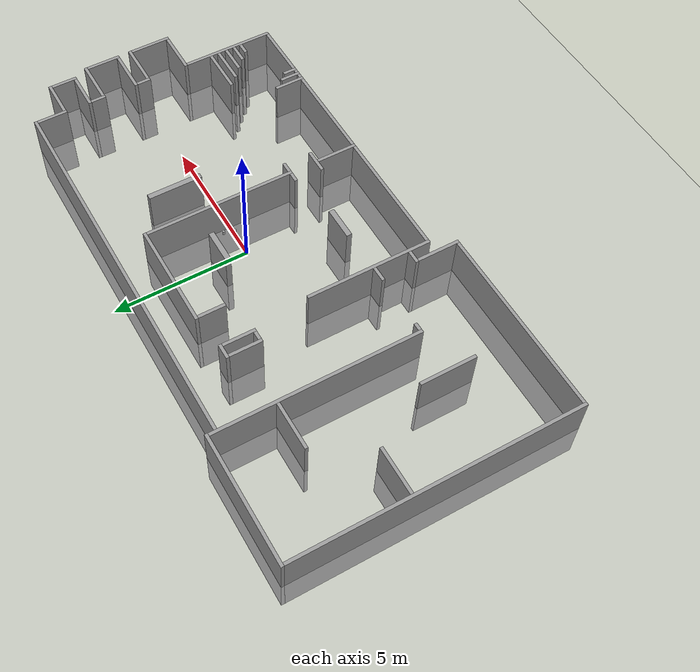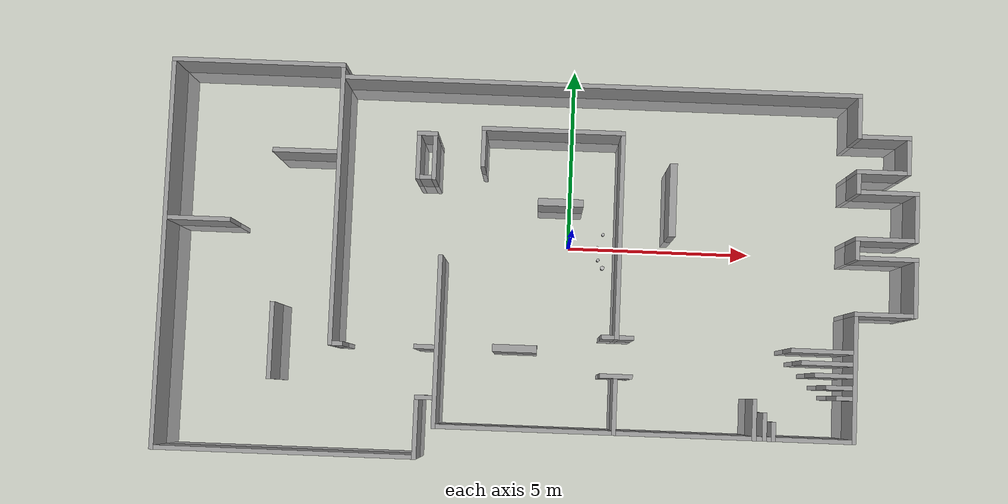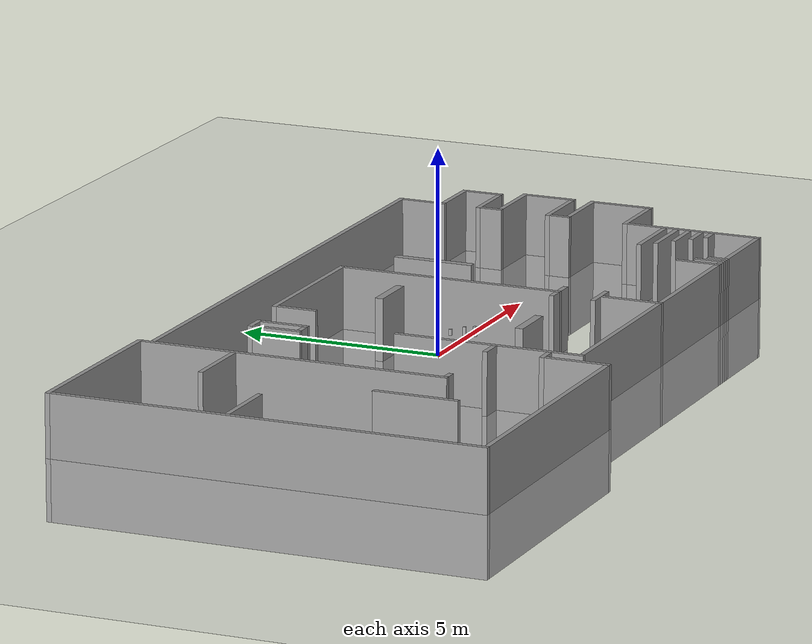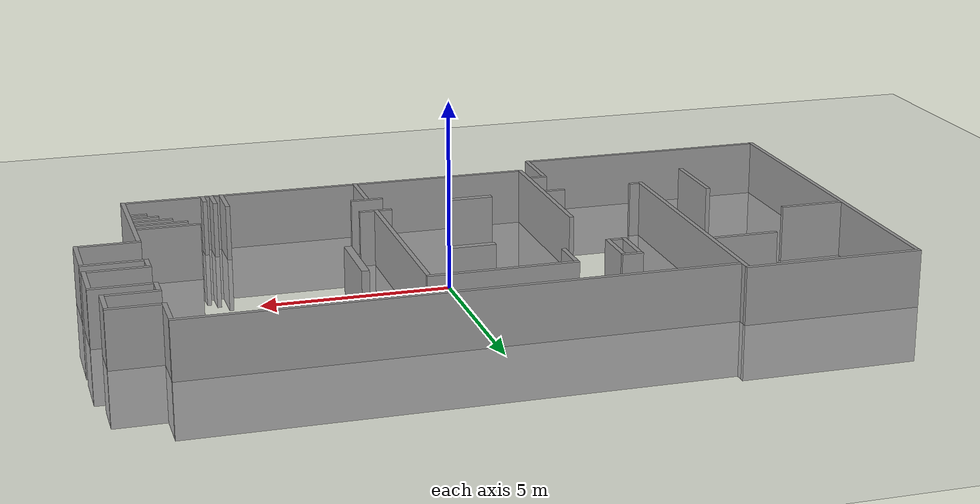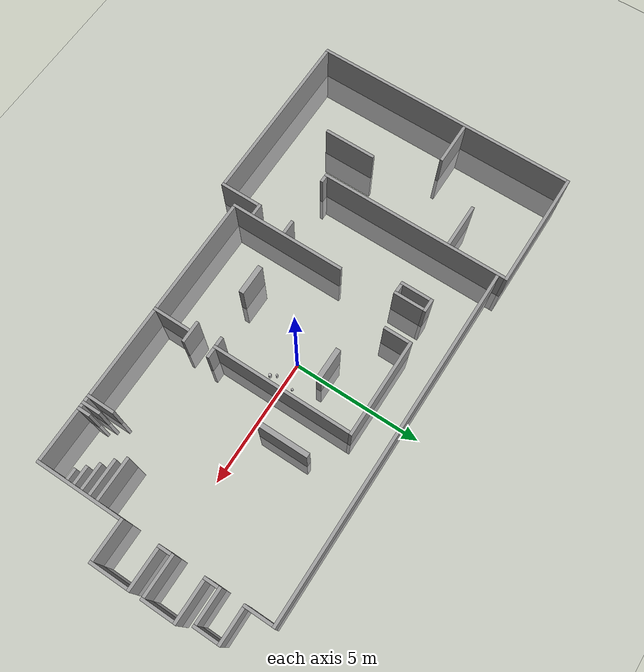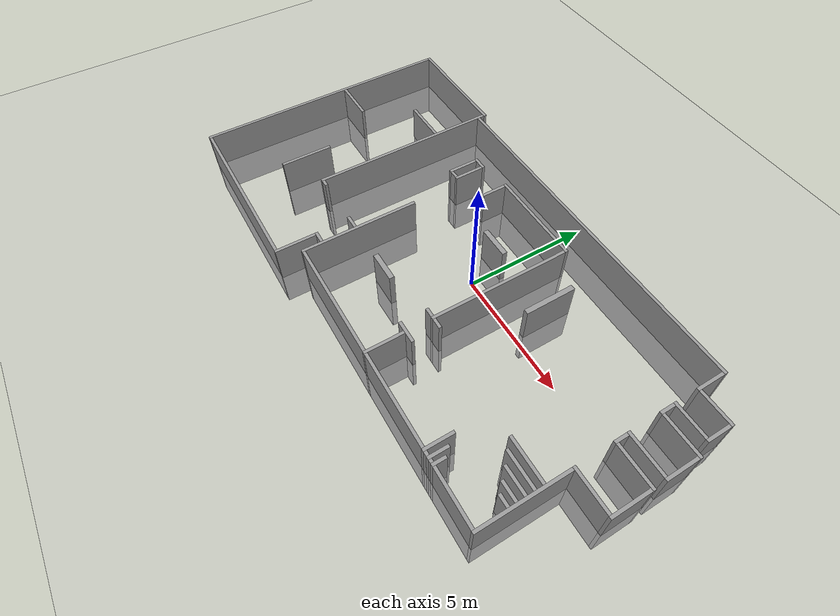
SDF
<sdf version="1.6">
 <world name="home">
  <light name="sun" type="directional">
   <pose>0 0 10 0 -0 0</pose>
   <diffuse>0.8 0.8 0.8 1</diffuse>
   <specular>0.1 0.1 0.1 1</specular>
   <attenuation>
    <range>1000</range>
    <constant>0.9</constant>
    <linear>0.01</linear>
    <quadratic>0.001</quadratic>
   </attenuation>
   <direction>-0.5 0.5 -1</direction>
  </light>
  <model name="ground_plane">
   <static>1</static>
   <link name="link">
    <collision name="collision">
     <geometry><plane><normal>0 0 1</normal><size>100 100</size></plane></geometry>
     <surface><friction><ode><mu>100</mu><mu2>50</mu2></ode></friction></surface>
    </collision>
    <visual name="visual">
     <cast_shadows>0</cast_shadows>
     <geometry><plane><normal>0 0 1</normal><size>100 100</size></plane></geometry>
     <material>
      <script><uri>file://media/materials/scripts/gazebo.material</uri><name>Gazebo/Grey</name></script>
     </material>
    </visual>
   </link>
  </model>
  <gravity>0 0 -9.8</gravity>
  <magnetic_field>6e-06 2.3e-05 -4.2e-05</magnetic_field>
  <atmosphere type="adiabatic"/>
  <physics name="default_physics" default="0" type="ode">
   <max_step_size>0.001</max_step_size>
   <real_time_factor>1</real_time_factor>
   <real_time_update_rate>1000</real_time_update_rate>
  </physics>
  <scene><ambient>0.4 0.4 0.4 1</ambient><background>0.7 0.7 0.7 1</background><shadows>1</shadows></scene>
  <spherical_coordinates>
   <surface_model>EARTH_WGS84</surface_model>
   <latitude_deg>0</latitude_deg>
   <longitude_deg>0</longitude_deg>
   <elevation>0</elevation>
   <heading_deg>0</heading_deg>
  </spherical_coordinates>
  <model name="TestingRoom">
   <static>1</static>
   <link name="Wall_0">
    <collision name="Wall_0_Collision">
     <geometry><box><size>4.76 0.12 3</size></box></geometry>
     <pose>2.58 -0.26 0 0 -0 0</pose>
    </collision>
    <visual name="Wall_0_Visual">
     <geometry><box><size>4.76 0.12 3</size></box></geometry>
     <material>
      <script><uri>file://media/materials/scripts/gazebo.material</uri><name>Gazebo/Grey</name></script>
     </material>
     <pose>2.58 -0.26 0 0 -0 0</pose>
    </visual>
   </link>
   <link name="Wall_1">
    <collision name="Wall_1_Collision">
     <geometry><box><size>0.12 10.56 3</size></box></geometry>
     <pose>0.26 -5.6 0 0 -0 0</pose>
    </collision>
    <visual name="Wall_1_Visual">
     <geometry><box><size>0.12 10.56 3</size></box></geometry>
     <material>
      <script><uri>file://media/materials/scripts/gazebo.material</uri><name>Gazebo/Grey</name></script>
     </material>
     <pose>0.26 -5.6 0 0 -0 0</pose>
    </visual>
   </link>
   <link name="Wall_2">
    <collision name="Wall_2_Collision">
     <geometry><box><size>0.12 7.6 3</size></box></geometry>
     <pose>4.9 -4.12 0 0 -0 0</pose>
    </collision>
    <visual name="Wall_2_Visual">
     <geometry><box><size>0.12 7.6 3</size></box></geometry>
     <material>
      <script><uri>file://media/materials/scripts/gazebo.material</uri><name>Gazebo/Grey</name></script>
     </material>
     <pose>4.9 -4.12 0 0 -0 0</pose>
    </visual>
   </link>
   <link name="Wall_3">
    <collision name="Wall_3_Collision">
     <geometry><box><size>14.16 0.12 3</size></box></geometry>
     <pose>12.04 -0.58 0 0 -0 0</pose>
    </collision>
    <visual name="Wall_3_Visual">
     <geometry><box><size>14.16 0.12 3</size></box></geometry>
     <material>
      <script><uri>file://media/materials/scripts/gazebo.material</uri><name>Gazebo/Grey</name></script>
     </material>
     <pose>12.04 -0.58 0 0 -0 0</pose>
    </visual>
   </link>
   <link name="Wall_4">
    <collision name="Wall_4_Collision">
     <geometry><box><size>0.12 1.12 3</size></box></geometry>
     <pose>19.06 -1.2 0 0 -0 0</pose>
    </collision>
    <visual name="Wall_4_Visual">
     <geometry><box><size>0.12 1.12 3</size></box></geometry>
     <material>
      <script><uri>file://media/materials/scripts/gazebo.material</uri><name>Gazebo/Grey</name></script>
     </material>
     <pose>19.06 -1.2 0 0 -0 0</pose>
    </visual>
   </link>
   <link name="Wall_5">
    <collision name="Wall_5_Collision">
     <geometry><box><size>1.36 0.12 3</size></box></geometry>
     <pose>19.8 -1.7 0 0 -0 0</pose>
    </collision>
    <visual name="Wall_5_Visual">
     <geometry><box><size>1.36 0.12 3</size></box></geometry>
     <material>
      <script><uri>file://media/materials/scripts/gazebo.material</uri><name>Gazebo/Grey</name></script>
     </material>
     <pose>19.8 -1.7 0 0 -0 0</pose>
    </visual>
   </link>
   <link name="Wall_6">
    <collision name="Wall_6_Collision">
     <geometry><box><size>0.12 0.96 3</size></box></geometry>
     <pose>20.42 -2.24 0 0 -0 0</pose>
    </collision>
    <visual name="Wall_6_Visual">
     <geometry><box><size>0.12 0.96 3</size></box></geometry>
     <material>
      <script><uri>file://media/materials/scripts/gazebo.material</uri><name>Gazebo/Grey</name></script>
     </material>
     <pose>20.42 -2.24 0 0 -0 0</pose>
    </visual>
   </link>
   <link name="Wall_7">
    <collision name="Wall_7_Collision">
     <geometry><box><size>3.92 0.12 3</size></box></geometry>
     <pose>10.72 -1.86 0 0 -0 0</pose>
    </collision>
    <visual name="Wall_7_Visual">
     <geometry><box><size>3.92 0.12 3</size></box></geometry>
     <material>
      <script><uri>file://media/materials/scripts/gazebo.material</uri><name>Gazebo/Grey</name></script>
     </material>
     <pose>10.72 -1.86 0 0 -0 0</pose>
    </visual>
   </link>
   <link name="Wall_8">
    <collision name="Wall_8_Collision">
     <geometry><box><size>0.12 1 3</size></box></geometry>
     <pose>8.82 -2.42 0 0 -0 0</pose>
    </collision>
    <visual name="Wall_8_Visual">
     <geometry><box><size>0.12 1 3</size></box></geometry>
     <material>
      <script><uri>file://media/materials/scripts/gazebo.material</uri><name>Gazebo/Grey</name></script>
     </material>
     <pose>8.82 -2.42 0 0 -0 0</pose>
    </visual>
   </link>
   <link name="Wall_9">
    <collision name="Wall_9_Collision">
     <geometry><box><size>0.12 5.56 3</size></box></geometry>
     <pose>12.62 -4.7 0 0 -0 0</pose>
    </collision>
    <visual name="Wall_9_Visual">
     <geometry><box><size>0.12 5.56 3</size></box></geometry>
     <material>
      <script><uri>file://media/materials/scripts/gazebo.material</uri><name>Gazebo/Grey</name></script>
     </material>
     <pose>12.62 -4.7 0 0 -0 0</pose>
    </visual>
   </link>
   <link name="Wall_10">
    <collision name="Wall_10_Collision">
     <geometry><box><size>0.56 0.12 3</size></box></geometry>
     <pose>7.28 -2.06 0 0 -0 0</pose>
    </collision>
    <visual name="Wall_10_Visual">
     <geometry><box><size>0.56 0.12 3</size></box></geometry>
     <material>
      <script><uri>file://media/materials/scripts/gazebo.material</uri><name>Gazebo/Grey</name></script>
     </material>
     <pose>7.28 -2.06 0 0 -0 0</pose>
    </visual>
   </link>
   <link name="Wall_11">
    <collision name="Wall_11_Collision">
     <geometry><box><size>0.12 1.2 3</size></box></geometry>
     <pose>7.06 -2.72 0 0 -0 0</pose>
    </collision>
    <visual name="Wall_11_Visual">
     <geometry><box><size>0.12 1.2 3</size></box></geometry>
     <material>
      <script><uri>file://media/materials/scripts/gazebo.material</uri><name>Gazebo/Grey</name></script>
     </material>
     <pose>7.06 -2.72 0 0 -0 0</pose>
    </visual>
   </link>
   <link name="Wall_12">
    <collision name="Wall_12_Collision">
     <geometry><box><size>0.12 1.2 3</size></box></geometry>
     <pose>7.5 -2.72 0 0 -0 0</pose>
    </collision>
    <visual name="Wall_12_Visual">
     <geometry><box><size>0.12 1.2 3</size></box></geometry>
     <material>
      <script><uri>file://media/materials/scripts/gazebo.material</uri><name>Gazebo/Grey</name></script>
     </material>
     <pose>7.5 -2.72 0 0 -0 0</pose>
    </visual>
   </link>
   <link name="Wall_13">
    <collision name="Wall_13_Collision">
     <geometry><box><size>1.76 0.12 3</size></box></geometry>
     <pose>3.96 -2.66 0 0 -0 0</pose>
    </collision>
    <visual name="Wall_13_Visual">
     <geometry><box><size>1.76 0.12 3</size></box></geometry>
     <material>
      <script><uri>file://media/materials/scripts/gazebo.material</uri><name>Gazebo/Grey</name></script>
     </material>
     <pose>3.96 -2.66 0 0 -0 0</pose>
    </visual>
   </link>
   <link name="Wall_14">
    <collision name="Wall_14_Collision">
     <geometry><box><size>1.36 0.12 3</size></box></geometry>
     <pose>19.68 -2.66 0 0 -0 0</pose>
    </collision>
    <visual name="Wall_14_Visual">
     <geometry><box><size>1.36 0.12 3</size></box></geometry>
     <material>
      <script><uri>file://media/materials/scripts/gazebo.material</uri><name>Gazebo/Grey</name></script>
     </material>
     <pose>19.68 -2.66 0 0 -0 0</pose>
    </visual>
   </link>
   <link name="Wall_15">
    <collision name="Wall_15_Collision">
     <geometry><box><size>0.2 2 3</size></box></geometry>
     <pose>14.02 -3.64 0 0 -0 0</pose>
    </collision>
    <visual name="Wall_15_Visual">
     <geometry><box><size>0.2 2 3</size></box></geometry>
     <material>
      <script><uri>file://media/materials/scripts/gazebo.material</uri><name>Gazebo/Grey</name></script>
     </material>
     <pose>14.02 -3.64 0 0 -0 0</pose>
    </visual>
   </link>
   <link name="Wall_16">
    <collision name="Wall_16_Collision">
     <geometry><box><size>0.12 0.56 3</size></box></geometry>
     <pose>19.06 -3 0 0 -0 0</pose>
    </collision>
    <visual name="Wall_16_Visual">
     <geometry><box><size>0.12 0.56 3</size></box></geometry>
     <material>
      <script><uri>file://media/materials/scripts/gazebo.material</uri><name>Gazebo/Grey</name></script>
     </material>
     <pose>19.06 -3 0 0 -0 0</pose>
    </visual>
   </link>
   <link name="Wall_17">
    <collision name="Wall_17_Collision">
     <geometry><box><size>1.6 0.12 3</size></box></geometry>
     <pose>19.92 -3.22 0 0 -0 0</pose>
    </collision>
    <visual name="Wall_17_Visual">
     <geometry><box><size>1.6 0.12 3</size></box></geometry>
     <material>
      <script><uri>file://media/materials/scripts/gazebo.material</uri><name>Gazebo/Grey</name></script>
     </material>
     <pose>19.92 -3.22 0 0 -0 0</pose>
    </visual>
   </link>
   <link name="Wall_18">
    <collision name="Wall_18_Collision">
     <geometry><box><size>0.32 0.12 3</size></box></geometry>
     <pose>7.28 -3.26 0 0 -0 0</pose>
    </collision>
    <visual name="Wall_18_Visual">
     <geometry><box><size>0.32 0.12 3</size></box></geometry>
     <material>
      <script><uri>file://media/materials/scripts/gazebo.material</uri><name>Gazebo/Grey</name></script>
     </material>
     <pose>7.28 -3.26 0 0 -0 0</pose>
    </visual>
   </link>
   <link name="Wall_19">
    <collision name="Wall_19_Collision">
     <geometry><box><size>0.12 1.28 3</size></box></geometry>
     <pose>20.66 -3.92 0 0 -0 0</pose>
    </collision>
    <visual name="Wall_19_Visual">
     <geometry><box><size>0.12 1.28 3</size></box></geometry>
     <material>
      <script><uri>file://media/materials/scripts/gazebo.material</uri><name>Gazebo/Grey</name></script>
     </material>
     <pose>20.66 -3.92 0 0 -0 0</pose>
    </visual>
   </link>
   <link name="Wall_20">
    <collision name="Wall_20_Collision">
     <geometry><box><size>1.24 0.2 3</size></box></geometry>
     <pose>10.98 -3.82 0 0 -0 0</pose>
    </collision>
    <visual name="Wall_20_Visual">
     <geometry><box><size>1.24 0.2 3</size></box></geometry>
     <material>
      <script><uri>file://media/materials/scripts/gazebo.material</uri><name>Gazebo/Grey</name></script>
     </material>
     <pose>10.98 -3.82 0 0 -0 0</pose>
    </visual>
   </link>
   <link name="Wall_21">
    <collision name="Wall_21_Collision">
     <geometry><box><size>1.6 0.12 3</size></box></geometry>
     <pose>19.8 -4.5 0 0 -0 0</pose>
    </collision>
    <visual name="Wall_21_Visual">
     <geometry><box><size>1.6 0.12 3</size></box></geometry>
     <material>
      <script><uri>file://media/materials/scripts/gazebo.material</uri><name>Gazebo/Grey</name></script>
     </material>
     <pose>19.8 -4.5 0 0 -0 0</pose>
    </visual>
   </link>
   <link name="Wall_22">
    <collision name="Wall_22_Collision">
     <geometry><box><size>1.72 0.12 3</size></box></geometry>
     <pose>1.18 -4.62 0 0 -0 0</pose>
    </collision>
    <visual name="Wall_22_Visual">
     <geometry><box><size>1.72 0.12 3</size></box></geometry>
     <material>
      <script><uri>file://media/materials/scripts/gazebo.material</uri><name>Gazebo/Grey</name></script>
     </material>
     <pose>1.18 -4.62 0 0 -0 0</pose>
    </visual>
   </link>
   <link name="Wall_23">
    <collision name="Wall_23_Collision">
     <geometry><box><size>0.12 0.52 3</size></box></geometry>
     <pose>19.06 -4.82 0 0 -0 0</pose>
    </collision>
    <visual name="Wall_23_Visual">
     <geometry><box><size>0.12 0.52 3</size></box></geometry>
     <material>
      <script><uri>file://media/materials/scripts/gazebo.material</uri><name>Gazebo/Grey</name></script>
     </material>
     <pose>19.06 -4.82 0 0 -0 0</pose>
    </visual>
   </link>
   <link name="Wall_24">
    <collision name="Wall_24_Collision">
     <geometry><box><size>1.6 0.12 3</size></box></geometry>
     <pose>19.92 -5.02 0 0 -0 0</pose>
    </collision>
    <visual name="Wall_24_Visual">
     <geometry><box><size>1.6 0.12 3</size></box></geometry>
     <material>
      <script><uri>file://media/materials/scripts/gazebo.material</uri><name>Gazebo/Grey</name></script>
     </material>
     <pose>19.92 -5.02 0 0 -0 0</pose>
    </visual>
   </link>
   <link name="Wall_25">
    <collision name="Wall_25_Collision">
     <geometry><box><size>0.12 1.52 3</size></box></geometry>
     <pose>20.66 -5.84 0 0 -0 0</pose>
    </collision>
    <visual name="Wall_25_Visual">
     <geometry><box><size>0.12 1.52 3</size></box></geometry>
     <material>
      <script><uri>file://media/materials/scripts/gazebo.material</uri><name>Gazebo/Grey</name></script>
     </material>
     <pose>20.66 -5.84 0 0 -0 0</pose>
    </visual>
   </link>
   <link name="Wall_26">
    <collision name="Wall_26_Collision">
     <geometry><box><size>0.12 4.68 3</size></box></geometry>
     <pose>7.78 -7.7 0 0 -0 0</pose>
    </collision>
    <visual name="Wall_26_Visual">
     <geometry><box><size>0.12 4.68 3</size></box></geometry>
     <material>
      <script><uri>file://media/materials/scripts/gazebo.material</uri><name>Gazebo/Grey</name></script>
     </material>
     <pose>7.78 -7.7 0 0 -0 0</pose>
    </visual>
   </link>
   <link name="Wall_27">
    <collision name="Wall_27_Collision">
     <geometry><box><size>1.6 0.12 3</size></box></geometry>
     <pose>19.8 -6.54 0 0 -0 0</pose>
    </collision>
    <visual name="Wall_27_Visual">
     <geometry><box><size>1.6 0.12 3</size></box></geometry>
     <material>
      <script><uri>file://media/materials/scripts/gazebo.material</uri><name>Gazebo/Grey</name></script>
     </material>
     <pose>19.8 -6.54 0 0 -0 0</pose>
    </visual>
   </link>
   <link name="Wall_28">
    <collision name="Wall_28_Collision">
     <geometry><box><size>0.12 3.44 3</size></box></geometry>
     <pose>19.06 -8.32 0 0 -0 0</pose>
    </collision>
    <visual name="Wall_28_Visual">
     <geometry><box><size>0.12 3.44 3</size></box></geometry>
     <material>
      <script><uri>file://media/materials/scripts/gazebo.material</uri><name>Gazebo/Grey</name></script>
     </material>
     <pose>19.06 -8.32 0 0 -0 0</pose>
    </visual>
   </link>
   <link name="Wall_29">
    <collision name="Wall_29_Collision">
     <geometry><box><size>0.12 2.08 3</size></box></geometry>
     <pose>3.3 -7.84 0 0 -0 0</pose>
    </collision>
    <visual name="Wall_29_Visual">
     <geometry><box><size>0.12 2.08 3</size></box></geometry>
     <material>
      <script><uri>file://media/materials/scripts/gazebo.material</uri><name>Gazebo/Grey</name></script>
     </material>
     <pose>3.3 -7.84 0 0 -0 0</pose>
    </visual>
   </link>
   <link name="Wall_30">
    <collision name="Wall_30_Collision">
     <geometry><box><size>0.36 0.12 3</size></box></geometry>
     <pose>12.38 -7.42 0 0 -0 0</pose>
    </collision>
    <visual name="Wall_30_Visual">
     <geometry><box><size>0.36 0.12 3</size></box></geometry>
     <material>
      <script><uri>file://media/materials/scripts/gazebo.material</uri><name>Gazebo/Grey</name></script>
     </material>
     <pose>12.38 -7.42 0 0 -0 0</pose>
    </visual>
   </link>
   <link name="Wall_31">
    <collision name="Wall_31_Collision">
     <geometry><box><size>0.4 0.12 3</size></box></geometry>
     <pose>12.88 -7.42 0 0 -0 0</pose>
    </collision>
    <visual name="Wall_31_Visual">
     <geometry><box><size>0.4 0.12 3</size></box></geometry>
     <material>
      <script><uri>file://media/materials/scripts/gazebo.material</uri><name>Gazebo/Grey</name></script>
     </material>
     <pose>12.88 -7.42 0 0 -0 0</pose>
    </visual>
   </link>
   <link name="Wall_32">
    <collision name="Wall_32_Collision">
     <geometry><box><size>1.68 0.12 3</size></box></geometry>
     <pose>18.16 -7.58 0 0 -0 0</pose>
    </collision>
    <visual name="Wall_32_Visual">
     <geometry><box><size>1.68 0.12 3</size></box></geometry>
     <material>
      <script><uri>file://media/materials/scripts/gazebo.material</uri><name>Gazebo/Grey</name></script>
     </material>
     <pose>18.16 -7.58 0 0 -0 0</pose>
    </visual>
   </link>
   <link name="Wall_33">
    <collision name="Wall_33_Collision">
     <geometry><box><size>1.2 0.2 3</size></box></geometry>
     <pose>9.88 -7.82 0 0 -0 0</pose>
    </collision>
    <visual name="Wall_33_Visual">
     <geometry><box><size>1.2 0.2 3</size></box></geometry>
     <material>
      <script><uri>file://media/materials/scripts/gazebo.material</uri><name>Gazebo/Grey</name></script>
     </material>
     <pose>9.88 -7.82 0 0 -0 0</pose>
    </visual>
   </link>
   <link name="Wall_34">
    <collision name="Wall_34_Collision">
     <geometry><box><size>0.28 0.12 3</size></box></geometry>
     <pose>5.1 -7.86 0 0 -0 0</pose>
    </collision>
    <visual name="Wall_34_Visual">
     <geometry><box><size>0.28 0.12 3</size></box></geometry>
     <material>
      <script><uri>file://media/materials/scripts/gazebo.material</uri><name>Gazebo/Grey</name></script>
     </material>
     <pose>5.1 -7.86 0 0 -0 0</pose>
    </visual>
   </link>
   <link name="Wall_35">
    <collision name="Wall_35_Collision">
     <geometry><box><size>0.56 0.12 3</size></box></geometry>
     <pose>7.44 -7.86 0 0 -0 0</pose>
    </collision>
    <visual name="Wall_35_Visual">
     <geometry><box><size>0.56 0.12 3</size></box></geometry>
     <material>
      <script><uri>file://media/materials/scripts/gazebo.material</uri><name>Gazebo/Grey</name></script>
     </material>
     <pose>7.44 -7.86 0 0 -0 0</pose>
    </visual>
   </link>
   <link name="Wall_36">
    <collision name="Wall_36_Collision">
     <geometry><box><size>1.4 0.12 3</size></box></geometry>
     <pose>18.3 -7.9 0 0 -0 0</pose>
    </collision>
    <visual name="Wall_36_Visual">
     <geometry><box><size>1.4 0.12 3</size></box></geometry>
     <material>
      <script><uri>file://media/materials/scripts/gazebo.material</uri><name>Gazebo/Grey</name></script>
     </material>
     <pose>18.3 -7.9 0 0 -0 0</pose>
    </visual>
   </link>
   <link name="Wall_37">
    <collision name="Wall_37_Collision">
     <geometry><box><size>1.04 0.12 3</size></box></geometry>
     <pose>18.48 -8.22 0 0 -0 0</pose>
    </collision>
    <visual name="Wall_37_Visual">
     <geometry><box><size>1.04 0.12 3</size></box></geometry>
     <material>
      <script><uri>file://media/materials/scripts/gazebo.material</uri><name>Gazebo/Grey</name></script>
     </material>
     <pose>18.48 -8.22 0 0 -0 0</pose>
    </visual>
   </link>
   <link name="Wall_38">
    <collision name="Wall_38_Collision">
     <geometry><box><size>0.88 0.12 3</size></box></geometry>
     <pose>12.64 -8.46 0 0 -0 0</pose>
    </collision>
    <visual name="Wall_38_Visual">
     <geometry><box><size>0.88 0.12 3</size></box></geometry>
     <material>
      <script><uri>file://media/materials/scripts/gazebo.material</uri><name>Gazebo/Grey</name></script>
     </material>
     <pose>12.64 -8.46 0 0 -0 0</pose>
    </visual>
   </link>
   <link name="Wall_39">
    <collision name="Wall_39_Collision">
     <geometry><box><size>0.72 0.12 3</size></box></geometry>
     <pose>18.64 -8.54 0 0 -0 0</pose>
    </collision>
    <visual name="Wall_39_Visual">
     <geometry><box><size>0.72 0.12 3</size></box></geometry>
     <material>
      <script><uri>file://media/materials/scripts/gazebo.material</uri><name>Gazebo/Grey</name></script>
     </material>
     <pose>18.64 -8.54 0 0 -0 0</pose>
    </visual>
   </link>
   <link name="Wall_40">
    <collision name="Wall_40_Collision">
     <geometry><box><size>0.12 1.52 3</size></box></geometry>
     <pose>12.62 -9.28 0 0 -0 0</pose>
    </collision>
    <visual name="Wall_40_Visual">
     <geometry><box><size>0.12 1.52 3</size></box></geometry>
     <material>
      <script><uri>file://media/materials/scripts/gazebo.material</uri><name>Gazebo/Grey</name></script>
     </material>
     <pose>12.62 -9.28 0 0 -0 0</pose>
    </visual>
   </link>
   <link name="Wall_41">
    <collision name="Wall_41_Collision">
     <geometry><box><size>0.44 0.12 3</size></box></geometry>
     <pose>18.78 -8.82 0 0 -0 0</pose>
    </collision>
    <visual name="Wall_41_Visual">
     <geometry><box><size>0.44 0.12 3</size></box></geometry>
     <material>
      <script><uri>file://media/materials/scripts/gazebo.material</uri><name>Gazebo/Grey</name></script>
     </material>
     <pose>18.78 -8.82 0 0 -0 0</pose>
    </visual>
   </link>
   <link name="Wall_42">
    <collision name="Wall_42_Collision">
     <geometry><box><size>0.12 1.12 3</size></box></geometry>
     <pose>16.38 -9.48 0 0 -0 0</pose>
    </collision>
    <visual name="Wall_42_Visual">
     <geometry><box><size>0.12 1.12 3</size></box></geometry>
     <material>
      <script><uri>file://media/materials/scripts/gazebo.material</uri><name>Gazebo/Grey</name></script>
     </material>
     <pose>16.38 -9.48 0 0 -0 0</pose>
    </visual>
   </link>
   <link name="Wall_43">
    <collision name="Wall_43_Collision">
     <geometry><box><size>0.48 0.12 3</size></box></geometry>
     <pose>7.48 -9.22 0 0 -0 0</pose>
    </collision>
    <visual name="Wall_43_Visual">
     <geometry><box><size>0.48 0.12 3</size></box></geometry>
     <material>
      <script><uri>file://media/materials/scripts/gazebo.material</uri><name>Gazebo/Grey</name></script>
     </material>
     <pose>7.48 -9.22 0 0 -0 0</pose>
    </visual>
   </link>
   <link name="Wall_44">
    <collision name="Wall_44_Collision">
     <geometry><box><size>0.12 1.6 3</size></box></geometry>
     <pose>7.3 -10.08 0 0 -0 0</pose>
    </collision>
    <visual name="Wall_44_Visual">
     <geometry><box><size>0.12 1.6 3</size></box></geometry>
     <material>
      <script><uri>file://media/materials/scripts/gazebo.material</uri><name>Gazebo/Grey</name></script>
     </material>
     <pose>7.3 -10.08 0 0 -0 0</pose>
    </visual>
   </link>
   <link name="Wall_45">
    <collision name="Wall_45_Collision">
     <geometry><box><size>0.12 0.76 3</size></box></geometry>
     <pose>16.66 -9.66 0 0 -0 0</pose>
    </collision>
    <visual name="Wall_45_Visual">
     <geometry><box><size>0.12 0.76 3</size></box></geometry>
     <material>
      <script><uri>file://media/materials/scripts/gazebo.material</uri><name>Gazebo/Grey</name></script>
     </material>
     <pose>16.66 -9.66 0 0 -0 0</pose>
    </visual>
   </link>
   <link name="Wall_46">
    <collision name="Wall_46_Collision">
     <geometry><box><size>0.12 0.52 3</size></box></geometry>
     <pose>16.9 -9.78 0 0 -0 0</pose>
    </collision>
    <visual name="Wall_46_Visual">
     <geometry><box><size>0.12 0.52 3</size></box></geometry>
     <material>
      <script><uri>file://media/materials/scripts/gazebo.material</uri><name>Gazebo/Grey</name></script>
     </material>
     <pose>16.9 -9.78 0 0 -0 0</pose>
    </visual>
   </link>
   <link name="Wall_47">
    <collision name="Wall_47_Collision">
     <geometry><box><size>4.72 0.12 3</size></box></geometry>
     <pose>10.2 -9.98 0 0 -0 0</pose>
    </collision>
    <visual name="Wall_47_Visual">
     <geometry><box><size>4.72 0.12 3</size></box></geometry>
     <material>
      <script><uri>file://media/materials/scripts/gazebo.material</uri><name>Gazebo/Grey</name></script>
     </material>
     <pose>10.2 -9.98 0 0 -0 0</pose>
    </visual>
   </link>
   <link name="Wall_48">
    <collision name="Wall_48_Collision">
     <geometry><box><size>3.64 0.12 3</size></box></geometry>
     <pose>14.5 -9.98 0 0 -0 0</pose>
    </collision>
    <visual name="Wall_48_Visual">
     <geometry><box><size>3.64 0.12 3</size></box></geometry>
     <material>
      <script><uri>file://media/materials/scripts/gazebo.material</uri><name>Gazebo/Grey</name></script>
     </material>
     <pose>14.5 -9.98 0 0 -0 0</pose>
    </visual>
   </link>
   <link name="Wall_49">
    <collision name="Wall_49_Collision">
     <geometry><box><size>0.16 0.12 3</size></box></geometry>
     <pose>16.52 -9.98 0 0 -0 0</pose>
    </collision>
    <visual name="Wall_49_Visual">
     <geometry><box><size>0.16 0.12 3</size></box></geometry>
     <material>
      <script><uri>file://media/materials/scripts/gazebo.material</uri><name>Gazebo/Grey</name></script>
     </material>
     <pose>16.52 -9.98 0 0 -0 0</pose>
    </visual>
   </link>
   <link name="Wall_50">
    <collision name="Wall_50_Collision">
     <geometry><box><size>0.12 0.12 3</size></box></geometry>
     <pose>16.78 -9.98 0 0 -0 0</pose>
    </collision>
    <visual name="Wall_50_Visual">
     <geometry><box><size>0.12 0.12 3</size></box></geometry>
     <material>
      <script><uri>file://media/materials/scripts/gazebo.material</uri><name>Gazebo/Grey</name></script>
     </material>
     <pose>16.78 -9.98 0 0 -0 0</pose>
    </visual>
   </link>
   <link name="Wall_51">
    <collision name="Wall_51_Collision">
     <geometry><box><size>2.04 0.12 3</size></box></geometry>
     <pose>17.98 -9.98 0 0 -0 0</pose>
    </collision>
    <visual name="Wall_51_Visual">
     <geometry><box><size>2.04 0.12 3</size></box></geometry>
     <material>
      <script><uri>file://media/materials/scripts/gazebo.material</uri><name>Gazebo/Grey</name></script>
     </material>
     <pose>17.98 -9.98 0 0 -0 0</pose>
    </visual>
   </link>
   <link name="Wall_52">
    <collision name="Wall_52_Collision">
     <geometry><box><size>6.92 0.12 3</size></box></geometry>
     <pose>3.78 -10.82 0 0 -0 0</pose>
    </collision>
    <visual name="Wall_52_Visual">
     <geometry><box><size>6.92 0.12 3</size></box></geometry>
     <material>
      <script><uri>file://media/materials/scripts/gazebo.material</uri><name>Gazebo/Grey</name></script>
     </material>
     <pose>3.78 -10.82 0 0 -0 0</pose>
    </visual>
   </link>
   <pose>-11.2618 4.93502 0 0 -0 0</pose>
  </model>
  <model name="pringles2">
   <static>0</static>
   <link name="link">
    <inertial>
     <mass>0.25</mass>
     <inertia><ixx>0</ixx><ixy>0</ixy><ixz>0</ixz><iyy>0</iyy><iyz>0</iyz><izz>0</izz></inertia>
    </inertial>
    <collision name="collision">
     <pose>0 0 0.12 -3.14159 -0 0</pose>
     <geometry><cylinder><radius>0.04</radius><length>0.235</length></cylinder></geometry>
    </collision>
    <visual name="visual">
     <pose>0 0 0.12 -3.14159 -0 0</pose>
     <geometry><cylinder><radius>0.04</radius><length>0.235</length></cylinder></geometry>
     <material>
      <script>
       <uri>model://pringles2/material/scripts</uri>
       <uri>model://pringles2/material/textures</uri>
       <name>Custom/pringles2</name>
      </script>
     </material>
    </visual>
    <velocity_decay><linear>0</linear><angular>0</angular></velocity_decay>
   </link>
   <pose>0.814434 -0.330235 0.297499 0.0002 -8.4e-05 6e-06</pose>
  </model>
  <model name="sprite">
   <static>0</static>
   <link name="link">
    <inertial>
     <mass>0.25</mass>
     <inertia><ixx>0</ixx><ixy>0</ixy><ixz>0</ixz><iyy>0</iyy><iyz>0</iyz><izz>0</izz></inertia>
    </inertial>
    <collision name="collision">
     <pose>0 0 0.075 -3.14159 -0 0</pose>
     <geometry><cylinder><radius>0.04</radius><length>0.15</length></cylinder></geometry>
    </collision>
    <visual name="visual">
     <pose>0 0 0.075 -3.14159 -0 0</pose>
     <geometry><cylinder><radius>0.04</radius><length>0.15</length></cylinder></geometry>
     <material>
      <script>
       <uri>model://sprite/material/scripts</uri>
       <uri>model://sprite/material/textures</uri>
       <name>Custom/sprite</name>
      </script>
     </material>
    </visual>
    <velocity_decay><linear>0</linear><angular>0</angular></velocity_decay>
   </link>
   <pose>0.932782 0.392298 0.300008 0.000193 -5.2e-05 1e-06</pose>
  </model>
  <model name="beer">
   <link name="link">
    <pose>0 0 0.115 0 -0 0</pose>
    <inertial>
     <mass>0.39</mass>
     <inertia><ixx>0.00058</ixx><ixy>0</ixy><ixz>0</ixz><iyy>0.00058</iyy><iyz>0</iyz><izz>0.00019</izz></inertia>
    </inertial>
    <collision name="collision">
     <geometry><cylinder><radius>0.055</radius><length>0.23</length></cylinder></geometry>
    </collision>
    <visual name="visual">
     <geometry><cylinder><radius>0.055</radius><length>0.23</length></cylinder></geometry>
     <material>
      <script>
       <uri>model://beer/materials/scripts</uri>
       <uri>model://beer/materials/textures</uri>
       <name>Beer/Diffuse</name>
      </script>
     </material>
    </visual>
   </link>
   <pose>0.940583 -0.543616 0.300001 1.8e-05 6e-06 -0.003156</pose>
  </model>
  <model name="cocacola">
   <static>0</static>
   <link name="link">
    <inertial>
     <mass>0.125</mass>
     <inertia><ixx>0</ixx><ixy>0</ixy><ixz>0</ixz><iyy>0</iyy><iyz>0</iyz><izz>0</izz></inertia>
    </inertial>
    <collision name="collision">
     <pose>0 0 0.075 -3.14159 -0 0</pose>
     <geometry><cylinder><radius>0.04</radius><length>0.15</length></cylinder></geometry>
    </collision>
    <visual name="visual">
     <pose>0 0 0.075 -3.14159 -0 0</pose>
     <geometry><cylinder><radius>0.04</radius><length>0.15</length></cylinder></geometry>
     <material>
      <script>
       <uri>model://cocacola/material/scripts</uri>
       <uri>model://cocacola/material/textures</uri>
       <name>Custom/cocacola</name>
      </script>
     </material>
    </visual>
    <velocity_decay><linear>0</linear><angular>0</angular></velocity_decay>
   </link>
   <pose>0.781738 0.019114 0.30001 0.000155 -0.000179 2e-06</pose>
  </model>
 </world>
</sdf>
